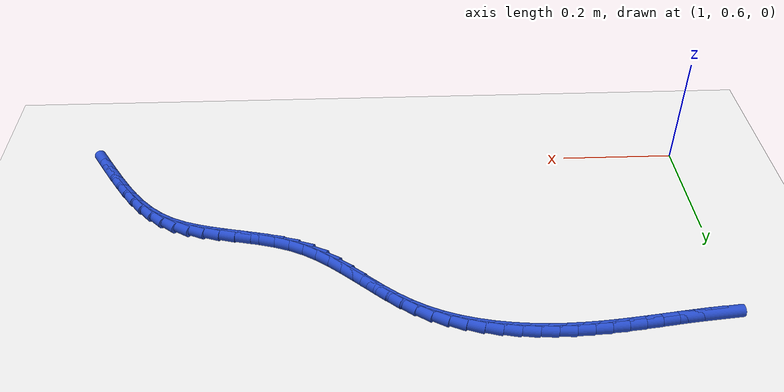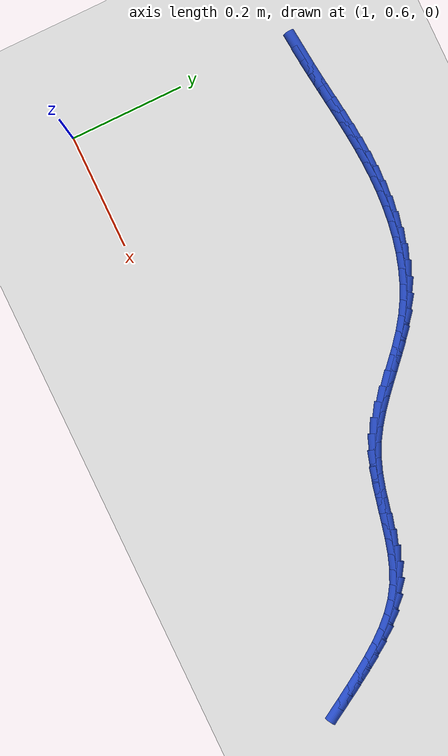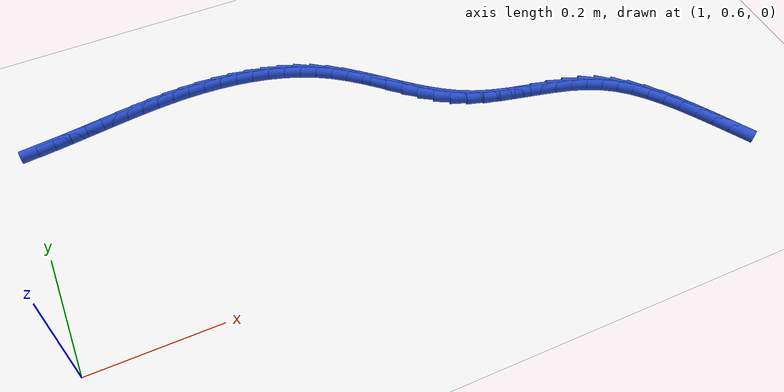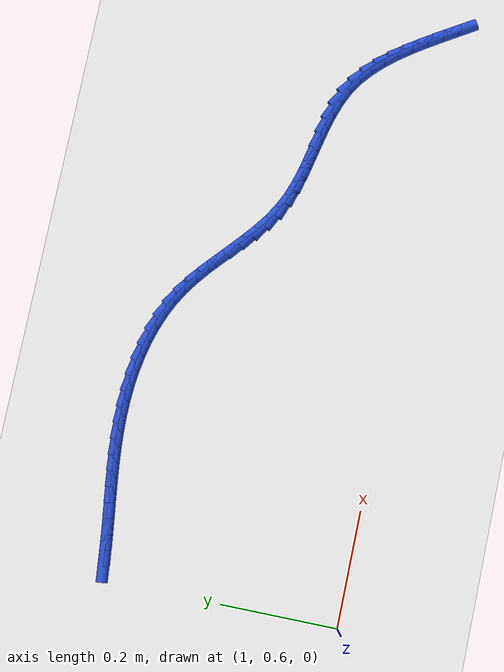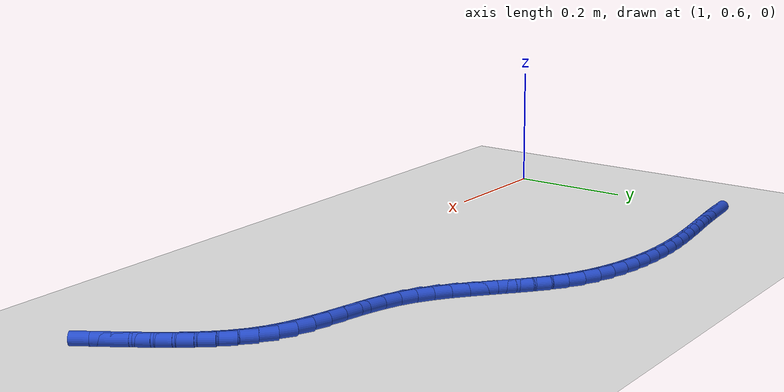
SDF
<sdf version="1.6">
 <world name="default">
  <model name="ground_plane">
   <static>1</static>
   <link name="link">
    <collision name="collision">
     <geometry><plane><normal>0 0 1</normal><size>100 100</size></plane></geometry>
     <surface><friction><ode><mu>100</mu><mu2>50</mu2></ode></friction></surface>
    </collision>
    <visual name="visual">
     <cast_shadows>0</cast_shadows>
     <geometry><plane><normal>0 0 1</normal><size>100 100</size></plane></geometry>
     <material>
      <script><uri>file://media/materials/scripts/gazebo.material</uri><name>Gazebo/WhiteGlow</name></script>
     </material>
    </visual>
   </link>
  </model>
  <model name="line">
   <link name="link_62">
    <pose>1.036236209310111 1.0056914690481047 0.01 0 1.57 0.10251934402903636</pose>
    <collision name="collision">
     <geometry><cylinder><radius>0.01</radius><length>0.08</length></cylinder></geometry>
    </collision>
    <visual name="visual">
     <material>
      <script><name>Gazebo/Blue</name><uri>file://media/materials/scripts/gazebo.material</uri></script>
     </material>
     <geometry><cylinder><radius>0.01</radius><length>0.08</length></cylinder></geometry>
    </visual>
   </link>
   <link name="link_63">
    <pose>1.0630230484448846 1.0084472997885436 0.01 0 1.57 0.11911920896090153</pose>
    <collision name="collision">
     <geometry><cylinder><radius>0.01</radius><length>0.08</length></cylinder></geometry>
    </collision>
    <visual name="visual">
     <material>
      <script><name>Gazebo/Blue</name><uri>file://media/materials/scripts/gazebo.material</uri></script>
     </material>
     <geometry><cylinder><radius>0.01</radius><length>0.08</length></cylinder></geometry>
    </visual>
   </link>
   <link name="link_64">
    <pose>1.089581349038742 1.011625952162886 0.01 0 1.57 0.12853354086852745</pose>
    <collision name="collision">
     <geometry><cylinder><radius>0.01</radius><length>0.08</length></cylinder></geometry>
    </collision>
    <visual name="visual">
     <material>
      <script><name>Gazebo/Blue</name><uri>file://media/materials/scripts/gazebo.material</uri></script>
     </material>
     <geometry><cylinder><radius>0.01</radius><length>0.08</length></cylinder></geometry>
    </visual>
   </link>
   <link name="link_65">
    <pose>1.115976495659816 1.0150374213583953 0.01 0 1.57 0.13060685056808405</pose>
    <collision name="collision">
     <geometry><cylinder><radius>0.01</radius><length>0.08</length></cylinder></geometry>
    </collision>
    <visual name="visual">
     <material>
      <script><name>Gazebo/Blue</name><uri>file://media/materials/scripts/gazebo.material</uri></script>
     </material>
     <geometry><cylinder><radius>0.01</radius><length>0.08</length></cylinder></geometry>
    </visual>
   </link>
   <link name="link_66">
    <pose>1.142273872876237 1.0184917025623337 0.01 0 1.57 0.12525326299890907</pose>
    <collision name="collision">
     <geometry><cylinder><radius>0.01</radius><length>0.08</length></cylinder></geometry>
    </collision>
    <visual name="visual">
     <material>
      <script><name>Gazebo/Blue</name><uri>file://media/materials/scripts/gazebo.material</uri></script>
     </material>
     <geometry><cylinder><radius>0.01</radius><length>0.08</length></cylinder></geometry>
    </visual>
   </link>
   <link name="link_67">
    <pose>1.168538865256138 1.0217987909619648 0.01 0 1.57 0.1124557656931879</pose>
    <collision name="collision">
     <geometry><cylinder><radius>0.01</radius><length>0.08</length></cylinder></geometry>
    </collision>
    <visual name="visual">
     <material>
      <script><name>Gazebo/Blue</name><uri>file://media/materials/scripts/gazebo.material</uri></script>
     </material>
     <geometry><cylinder><radius>0.01</radius><length>0.08</length></cylinder></geometry>
    </visual>
   </link>
   <link name="link_68">
    <pose>1.1948368573676498 1.0247686817445516 0.01 0 1.57 0.0922759749259275</pose>
    <collision name="collision">
     <geometry><cylinder><radius>0.01</radius><length>0.08</length></cylinder></geometry>
    </collision>
    <visual name="visual">
     <material>
      <script><name>Gazebo/Blue</name><uri>file://media/materials/scripts/gazebo.material</uri></script>
     </material>
     <geometry><cylinder><radius>0.01</radius><length>0.08</length></cylinder></geometry>
    </visual>
   </link>
   <link name="link_69">
    <pose>1.2212332337789045 1.0272113700973566 0.01 0 1.57 0.06487388456592673</pose>
    <collision name="collision">
     <geometry><cylinder><radius>0.01</radius><length>0.08</length></cylinder></geometry>
    </collision>
    <visual name="visual">
     <material>
      <script><name>Gazebo/Blue</name><uri>file://media/materials/scripts/gazebo.material</uri></script>
     </material>
     <geometry><cylinder><radius>0.01</radius><length>0.08</length></cylinder></geometry>
    </visual>
   </link>
   <link name="link_70">
    <pose>1.2477933790580347 1.0289368512076433 0.01 0 1.57 0.030535130146066913</pose>
    <collision name="collision">
     <geometry><cylinder><radius>0.01</radius><length>0.08</length></cylinder></geometry>
    </collision>
    <visual name="visual">
     <material>
      <script><name>Gazebo/Blue</name><uri>file://media/materials/scripts/gazebo.material</uri></script>
     </material>
     <geometry><cylinder><radius>0.01</radius><length>0.08</length></cylinder></geometry>
    </visual>
   </link>
   <link name="link_71">
    <pose>1.274582677773171 1.0297551202626745 0.01 0 1.57 -0.010173157349849507</pose>
    <collision name="collision">
     <geometry><cylinder><radius>0.01</radius><length>0.08</length></cylinder></geometry>
    </collision>
    <visual name="visual">
     <material>
      <script><name>Gazebo/Blue</name><uri>file://media/materials/scripts/gazebo.material</uri></script>
     </material>
     <geometry><cylinder><radius>0.01</radius><length>0.08</length></cylinder></geometry>
    </visual>
   </link>
   <link name="link_72">
    <pose>1.3016534377618698 1.0294797156608357 0.01 0 1.57 -0.055532549233065845</pose>
    <collision name="collision">
     <geometry><cylinder><radius>0.01</radius><length>0.08</length></cylinder></geometry>
    </collision>
    <visual name="visual">
     <material>
      <script><name>Gazebo/Blue</name><uri>file://media/materials/scripts/gazebo.material</uri></script>
     </material>
     <geometry><cylinder><radius>0.01</radius><length>0.08</length></cylinder></geometry>
    </visual>
   </link>
   <link name="link_73">
    <pose>1.3289087779363626 1.0279645993495408 0.01 0 1.57 -0.10512822399784358</pose>
    <collision name="collision">
     <geometry><cylinder><radius>0.01</radius><length>0.08</length></cylinder></geometry>
    </collision>
    <visual name="visual">
     <material>
      <script><name>Gazebo/Blue</name><uri>file://media/materials/scripts/gazebo.material</uri></script>
     </material>
     <geometry><cylinder><radius>0.01</radius><length>0.08</length></cylinder></geometry>
    </visual>
   </link>
   <link name="link_74">
    <pose>1.3561568923669778 1.0250894536773143 0.01 0 1.57 -0.15964538687604257</pose>
    <collision name="collision">
     <geometry><cylinder><radius>0.01</radius><length>0.08</length></cylinder></geometry>
    </collision>
    <visual name="visual">
     <material>
      <script><name>Gazebo/Blue</name><uri>file://media/materials/scripts/gazebo.material</uri></script>
     </material>
     <geometry><cylinder><radius>0.01</radius><length>0.08</length></cylinder></geometry>
    </visual>
   </link>
   <link name="link_75">
    <pose>1.3832044515678463 1.0207343738085026 0.01 0 1.57 -0.21980845777226873</pose>
    <collision name="collision">
     <geometry><cylinder><radius>0.01</radius><length>0.08</length></cylinder></geometry>
    </collision>
    <visual name="visual">
     <material>
      <script><name>Gazebo/Blue</name><uri>file://media/materials/scripts/gazebo.material</uri></script>
     </material>
     <geometry><cylinder><radius>0.01</radius><length>0.08</length></cylinder></geometry>
    </visual>
   </link>
   <link name="link_76">
    <pose>1.4098581260530965 1.0147794549074514 0.01 0 1.57 -0.2863358960407748</pose>
    <collision name="collision">
     <geometry><cylinder><radius>0.01</radius><length>0.08</length></cylinder></geometry>
    </collision>
    <visual name="visual">
     <material>
      <script><name>Gazebo/Blue</name><uri>file://media/materials/scripts/gazebo.material</uri></script>
     </material>
     <geometry><cylinder><radius>0.01</radius><length>0.08</length></cylinder></geometry>
    </visual>
   </link>
   <link name="link_77">
    <pose>1.4359245863368595 1.0071047921385066 0.01 0 1.57 -0.3598829242569389</pose>
    <collision name="collision">
     <geometry><cylinder><radius>0.01</radius><length>0.08</length></cylinder></geometry>
    </collision>
    <visual name="visual">
     <material>
      <script><name>Gazebo/Blue</name><uri>file://media/materials/scripts/gazebo.material</uri></script>
     </material>
     <geometry><cylinder><radius>0.01</radius><length>0.08</length></cylinder></geometry>
    </visual>
   </link>
   <link name="link_78">
    <pose>1.4612105029332643 0.9975904806660139 0.01 0 1.57 -0.4409500118255547</pose>
    <collision name="collision">
     <geometry><cylinder><radius>0.01</radius><length>0.08</length></cylinder></geometry>
    </collision>
    <visual name="visual">
     <material>
      <script><name>Gazebo/Blue</name><uri>file://media/materials/scripts/gazebo.material</uri></script>
     </material>
     <geometry><cylinder><radius>0.01</radius><length>0.08</length></cylinder></geometry>
    </visual>
   </link>
   <link name="link_79">
    <pose>1.4855225463564412 0.9861166156543196 0.01 0 1.57 -0.5295961335737249</pose>
    <collision name="collision">
     <geometry><cylinder><radius>0.01</radius><length>0.08</length></cylinder></geometry>
    </collision>
    <visual name="visual">
     <material>
      <script><name>Gazebo/Blue</name><uri>file://media/materials/scripts/gazebo.material</uri></script>
     </material>
     <geometry><cylinder><radius>0.01</radius><length>0.08</length></cylinder></geometry>
    </visual>
   </link>
   <link name="link_80">
    <pose>1.5086699831194919 0.972566693478076 0.01 0 1.57 -0.6144212143440627</pose>
    <collision name="collision">
     <geometry><cylinder><radius>0.01</radius><length>0.08</length></cylinder></geometry>
    </collision>
    <visual name="visual">
     <material>
      <script><name>Gazebo/Blue</name><uri>file://media/materials/scripts/gazebo.material</uri></script>
     </material>
     <geometry><cylinder><radius>0.01</radius><length>0.08</length></cylinder></geometry>
    </visual>
   </link>
   <link name="link_81">
    <pose>1.5306445072200225 0.9570632222554469 0.01 0 1.57 -0.6767141334704676</pose>
    <collision name="collision">
     <geometry><cylinder><radius>0.01</radius><length>0.08</length></cylinder></geometry>
    </collision>
    <visual name="visual">
     <material>
      <script><name>Gazebo/Blue</name><uri>file://media/materials/scripts/gazebo.material</uri></script>
     </material>
     <geometry><cylinder><radius>0.01</radius><length>0.08</length></cylinder></geometry>
    </visual>
   </link>
   <link name="link_82">
    <pose>1.551737078750155 0.9401208007548525 0.01 0 1.57 -0.7151545196686331</pose>
    <collision name="collision">
     <geometry><cylinder><radius>0.01</radius><length>0.08</length></cylinder></geometry>
    </collision>
    <visual name="visual">
     <material>
      <script><name>Gazebo/Blue</name><uri>file://media/materials/scripts/gazebo.material</uri></script>
     </material>
     <geometry><cylinder><radius>0.01</radius><length>0.08</length></cylinder></geometry>
    </visual>
   </link>
   <link name="link_83">
    <pose>1.5722664315542965 0.9222904161922971 0.01 0 1.57 -0.7303852027726812</pose>
    <collision name="collision">
     <geometry><cylinder><radius>0.01</radius><length>0.08</length></cylinder></geometry>
    </collision>
    <visual name="visual">
     <material>
      <script><name>Gazebo/Blue</name><uri>file://media/materials/scripts/gazebo.material</uri></script>
     </material>
     <geometry><cylinder><radius>0.01</radius><length>0.08</length></cylinder></geometry>
    </visual>
   </link>
   <link name="link_84">
    <pose>1.5925512994768547 0.9041230557837867 0.01 0 1.57 -0.7226871563008217</pose>
    <collision name="collision">
     <geometry><cylinder><radius>0.01</radius><length>0.08</length></cylinder></geometry>
    </collision>
    <visual name="visual">
     <material>
      <script><name>Gazebo/Blue</name><uri>file://media/materials/scripts/gazebo.material</uri></script>
     </material>
     <geometry><cylinder><radius>0.01</radius><length>0.08</length></cylinder></geometry>
    </visual>
   </link>
   <link name="link_85">
    <pose>1.6129104163622379 0.8861697067453255 0.01 0 1.57 -0.6917428814139618</pose>
    <collision name="collision">
     <geometry><cylinder><radius>0.01</radius><length>0.08</length></cylinder></geometry>
    </collision>
    <visual name="visual">
     <material>
      <script><name>Gazebo/Blue</name><uri>file://media/materials/scripts/gazebo.material</uri></script>
     </material>
     <geometry><cylinder><radius>0.01</radius><length>0.08</length></cylinder></geometry>
    </visual>
   </link>
   <link name="link_86">
    <pose>1.6336625160548532 0.8689813562929182 0.01 0 1.57 -0.6367433298396322</pose>
    <collision name="collision">
     <geometry><cylinder><radius>0.01</radius><length>0.08</length></cylinder></geometry>
    </collision>
    <visual name="visual">
     <material>
      <script><name>Gazebo/Blue</name><uri>file://media/materials/scripts/gazebo.material</uri></script>
     </material>
     <geometry><cylinder><radius>0.01</radius><length>0.08</length></cylinder></geometry>
    </visual>
   </link>
   <link name="link_87">
    <pose>1.655126332399109 0.8531089916425703 0.01 0 1.57 -0.5568863828993236</pose>
    <collision name="collision">
     <geometry><cylinder><radius>0.01</radius><length>0.08</length></cylinder></geometry>
    </collision>
    <visual name="visual">
     <material>
      <script><name>Gazebo/Blue</name><uri>file://media/materials/scripts/gazebo.material</uri></script>
     </material>
     <geometry><cylinder><radius>0.01</radius><length>0.08</length></cylinder></geometry>
    </visual>
   </link>
   <link name="link_88">
    <pose>1.6776205992394129 0.8391036000102863 0.01 0 1.57 -0.45298381559977685</pose>
    <collision name="collision">
     <geometry><cylinder><radius>0.01</radius><length>0.08</length></cylinder></geometry>
    </collision>
    <visual name="visual">
     <material>
      <script><name>Gazebo/Blue</name><uri>file://media/materials/scripts/gazebo.material</uri></script>
     </material>
     <geometry><cylinder><radius>0.01</radius><length>0.08</length></cylinder></geometry>
    </visual>
   </link>
   <link name="link_89">
    <pose>1.7014558068835706 0.8275020402164774 0.01 0 1.57 -0.34952521857889296</pose>
    <collision name="collision">
     <geometry><cylinder><radius>0.01</radius><length>0.08</length></cylinder></geometry>
    </collision>
    <visual name="visual">
     <material>
      <script><name>Gazebo/Blue</name><uri>file://media/materials/scripts/gazebo.material</uri></script>
     </material>
     <geometry><cylinder><radius>0.01</radius><length>0.08</length></cylinder></geometry>
    </visual>
   </link>
   <link name="link_90">
    <pose>1.726639914867946 0.8183226709978724 0.01 0 1.57 -0.2755187125285224</pose>
    <collision name="collision">
     <geometry><cylinder><radius>0.01</radius><length>0.08</length></cylinder></geometry>
    </collision>
    <visual name="visual">
     <material>
      <script><name>Gazebo/Blue</name><uri>file://media/materials/scripts/gazebo.material</uri></script>
     </material>
     <geometry><cylinder><radius>0.01</radius><length>0.08</length></cylinder></geometry>
    </visual>
   </link>
   <link name="link_91">
    <pose>1.7527979573813182 0.8109275647113939 0.01 0 1.57 -0.23112465351206965</pose>
    <collision name="collision">
     <geometry><cylinder><radius>0.01</radius><length>0.08</length></cylinder></geometry>
    </collision>
    <visual name="visual">
     <material>
      <script><name>Gazebo/Blue</name><uri>file://media/materials/scripts/gazebo.material</uri></script>
     </material>
     <geometry><cylinder><radius>0.01</radius><length>0.08</length></cylinder></geometry>
    </visual>
   </link>
   <link name="link_92">
    <pose>1.7795303657285275 0.8046366274334308 0.01 0 1.57 -0.21468055850429885</pose>
    <collision name="collision">
     <geometry><cylinder><radius>0.01</radius><length>0.08</length></cylinder></geometry>
    </collision>
    <visual name="visual">
     <material>
      <script><name>Gazebo/Blue</name><uri>file://media/materials/scripts/gazebo.material</uri></script>
     </material>
     <geometry><cylinder><radius>0.01</radius><length>0.08</length></cylinder></geometry>
    </visual>
   </link>
   <link name="link_93">
    <pose>1.8064375712144176 0.7987697652403719 0.01 0 1.57 -0.22556719818584267</pose>
    <collision name="collision">
     <geometry><cylinder><radius>0.01</radius><length>0.08</length></cylinder></geometry>
    </collision>
    <visual name="visual">
     <material>
      <script><name>Gazebo/Blue</name><uri>file://media/materials/scripts/gazebo.material</uri></script>
     </material>
     <geometry><cylinder><radius>0.01</radius><length>0.08</length></cylinder></geometry>
    </visual>
   </link>
   <link name="link_94">
    <pose>1.8331200051438317 0.7926468842086055 0.01 0 1.57 -0.26454535174687444</pose>
    <collision name="collision">
     <geometry><cylinder><radius>0.01</radius><length>0.08</length></cylinder></geometry>
    </collision>
    <visual name="visual">
     <material>
      <script><name>Gazebo/Blue</name><uri>file://media/materials/scripts/gazebo.material</uri></script>
     </material>
     <geometry><cylinder><radius>0.01</radius><length>0.08</length></cylinder></geometry>
    </visual>
   </link>
   <link name="link_95">
    <pose>1.8591780988216113 0.7855878904145212 0.01 0 1.57 -0.33358389174459396</pose>
    <collision name="collision">
     <geometry><cylinder><radius>0.01</radius><length>0.08</length></cylinder></geometry>
    </collision>
    <visual name="visual">
     <material>
      <script><name>Gazebo/Blue</name><uri>file://media/materials/scripts/gazebo.material</uri></script>
     </material>
     <geometry><cylinder><radius>0.01</radius><length>0.08</length></cylinder></geometry>
    </visual>
   </link>
   <link name="link_96">
    <pose>1.8842122835525992 0.7769126899345067 0.01 0 1.57 -0.4349972386091499</pose>
    <collision name="collision">
     <geometry><cylinder><radius>0.01</radius><length>0.08</length></cylinder></geometry>
    </collision>
    <visual name="visual">
     <material>
      <script><name>Gazebo/Blue</name><uri>file://media/materials/scripts/gazebo.material</uri></script>
     </material>
     <geometry><cylinder><radius>0.01</radius><length>0.08</length></cylinder></geometry>
    </visual>
   </link>
   <link name="link_97">
    <pose>1.907822990641639 0.7659411888449517 0.01 0 1.57 -0.5657448975996008</pose>
    <collision name="collision">
     <geometry><cylinder><radius>0.01</radius><length>0.08</length></cylinder></geometry>
    </collision>
    <visual name="visual">
     <material>
      <script><name>Gazebo/Blue</name><uri>file://media/materials/scripts/gazebo.material</uri></script>
     </material>
     <geometry><cylinder><radius>0.01</radius><length>0.08</length></cylinder></geometry>
    </visual>
   </link>
   <link name="link_98">
    <pose>1.9296574332456284 0.7520767201389933 0.01 0 1.57 -0.6918289131424801</pose>
    <collision name="collision">
     <geometry><cylinder><radius>0.01</radius><length>0.08</length></cylinder></geometry>
    </collision>
    <visual name="visual">
     <material>
      <script><name>Gazebo/Blue</name><uri>file://media/materials/scripts/gazebo.material</uri></script>
     </material>
     <geometry><cylinder><radius>0.01</radius><length>0.08</length></cylinder></geometry>
    </visual>
   </link>
   <link name="link_99">
    <pose>1.949757141939537 0.7354258101414767 0.01 0 1.57 -0.7953502782584237</pose>
    <collision name="collision">
     <geometry><cylinder><radius>0.01</radius><length>0.08</length></cylinder></geometry>
    </collision>
    <visual name="visual">
     <material>
      <script><name>Gazebo/Blue</name><uri>file://media/materials/scripts/gazebo.material</uri></script>
     </material>
     <geometry><cylinder><radius>0.01</radius><length>0.08</length></cylinder></geometry>
    </visual>
   </link>
   <link name="link_100">
    <pose>1.968361354596024 0.7164475601510968 0.01 0 1.57 -0.8766369496641022</pose>
    <collision name="collision">
     <geometry><cylinder><radius>0.01</radius><length>0.08</length></cylinder></geometry>
    </collision>
    <visual name="visual">
     <material>
      <script><name>Gazebo/Blue</name><uri>file://media/materials/scripts/gazebo.material</uri></script>
     </material>
     <geometry><cylinder><radius>0.01</radius><length>0.08</length></cylinder></geometry>
    </visual>
   </link>
   <link name="link_101">
    <pose>1.9857107906393274 0.6956037135440767 0.01 0 1.57 -0.9374515009923445</pose>
    <collision name="collision">
     <geometry><cylinder><radius>0.01</radius><length>0.08</length></cylinder></geometry>
    </collision>
    <visual name="visual">
     <material>
      <script><name>Gazebo/Blue</name><uri>file://media/materials/scripts/gazebo.material</uri></script>
     </material>
     <geometry><cylinder><radius>0.01</radius><length>0.08</length></cylinder></geometry>
    </visual>
   </link>
   <link name="link_102">
    <pose>2.002046169493682 0.6733560136966384 0.01 0 1.57 -0.9797498041801713</pose>
    <collision name="collision">
     <geometry><cylinder><radius>0.01</radius><length>0.08</length></cylinder></geometry>
    </collision>
    <visual name="visual">
     <material>
      <script><name>Gazebo/Blue</name><uri>file://media/materials/scripts/gazebo.material</uri></script>
     </material>
     <geometry><cylinder><radius>0.01</radius><length>0.08</length></cylinder></geometry>
    </visual>
   </link>
   <link name="link_103">
    <pose>2.017608210583324 0.6501662039850056 0.01 0 1.57 -1.0050725941081606</pose>
    <collision name="collision">
     <geometry><cylinder><radius>0.01</radius><length>0.08</length></cylinder></geometry>
    </collision>
    <visual name="visual">
     <material>
      <script><name>Gazebo/Blue</name><uri>file://media/materials/scripts/gazebo.material</uri></script>
     </material>
     <geometry><cylinder><radius>0.01</radius><length>0.08</length></cylinder></geometry>
    </visual>
   </link>
   <link name="link_104">
    <pose>2.0326376333324903 0.6264960277854004 0.01 0 1.57 -1.0157290755271093</pose>
    <collision name="collision">
     <geometry><cylinder><radius>0.01</radius><length>0.08</length></cylinder></geometry>
    </collision>
    <visual name="visual">
     <material>
      <script><name>Gazebo/Blue</name><uri>file://media/materials/scripts/gazebo.material</uri></script>
     </material>
     <geometry><cylinder><radius>0.01</radius><length>0.08</length></cylinder></geometry>
    </visual>
   </link>
   <link name="link_105">
    <pose>2.047348600677316 0.6027724500662188 0.01 0 1.57 -1.0254746070856198</pose>
    <collision name="collision">
     <geometry><cylinder><radius>0.01</radius><length>0.08</length></cylinder></geometry>
    </collision>
    <visual name="visual">
     <material>
      <script><name>Gazebo/Blue</name><uri>file://media/materials/scripts/gazebo.material</uri></script>
     </material>
     <geometry><cylinder><radius>0.01</radius><length>0.08</length></cylinder></geometry>
    </visual>
   </link>
  </model>
 </world>
</sdf>
